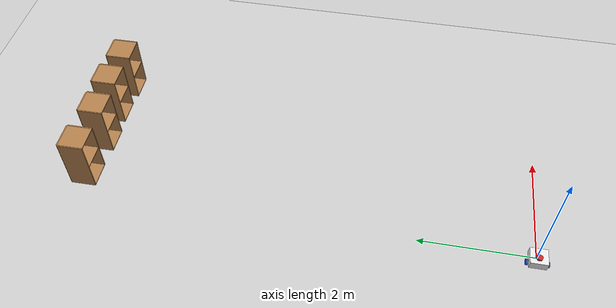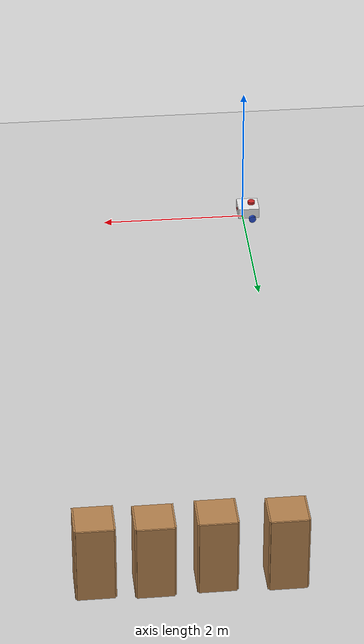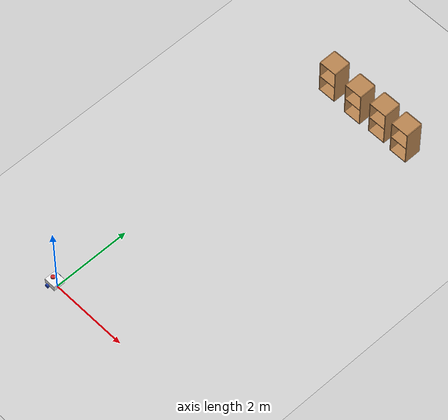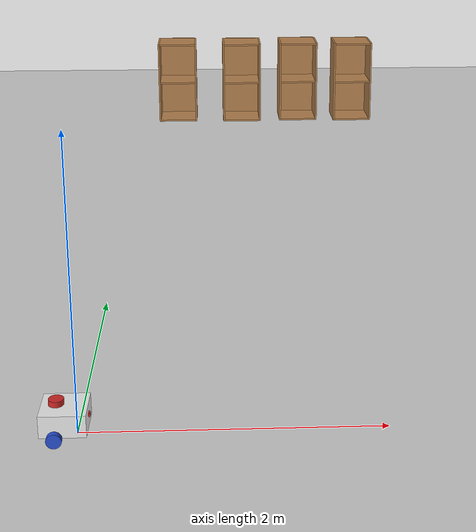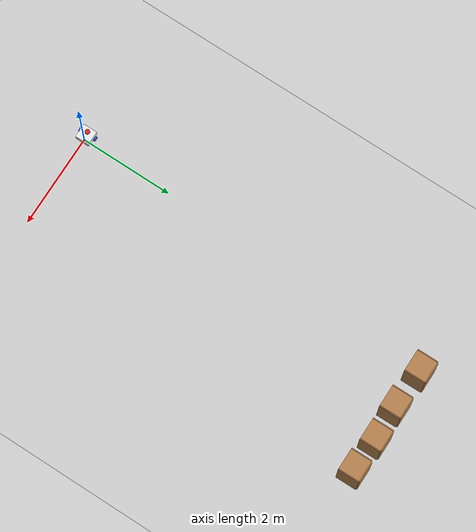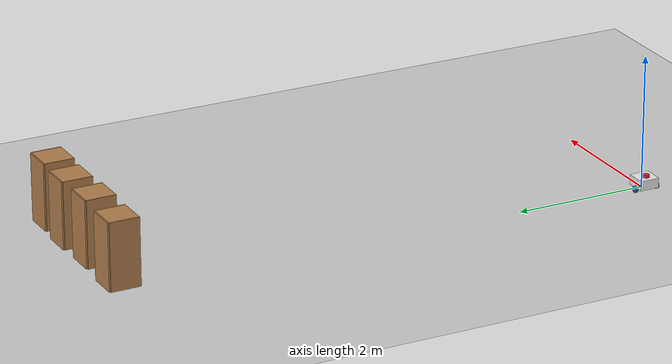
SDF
<sdf version="1.7">
 <world name="default">
  <light name="sun" type="directional">
   <pose>0 0 10 0 -0 0</pose>
   <diffuse>0.8 0.8 0.8 1</diffuse>
   <specular>0.2 0.2 0.2 1</specular>
   <attenuation>
    <range>1000</range>
    <constant>0.9</constant>
    <linear>0.01</linear>
    <quadratic>0.001</quadratic>
   </attenuation>
   <direction>-0.5 0.1 -0.9</direction>
   <spot><inner_angle>0</inner_angle><outer_angle>0</outer_angle><falloff>0</falloff></spot>
  </light>
  <model name="ground_plane">
   <static>1</static>
   <link name="link">
    <collision name="collision">
     <geometry><plane><normal>0 0 1</normal><size>100 100</size></plane></geometry>
     <surface><friction><ode><mu>100</mu><mu2>50</mu2></ode></friction></surface>
    </collision>
    <visual name="visual">
     <cast_shadows>0</cast_shadows>
     <geometry><plane><normal>0 0 1</normal><size>100 100</size></plane></geometry>
     <material>
      <script><uri>file://media/materials/scripts/gazebo.material</uri><name>Gazebo/Grey</name></script>
     </material>
    </visual>
   </link>
  </model>
  <gravity>0 0 -9.8</gravity>
  <magnetic_field>6e-06 2.3e-05 -4.2e-05</magnetic_field>
  <atmosphere type="adiabatic"/>
  <physics type="ode">
   <max_step_size>0.001</max_step_size>
   <real_time_factor>1</real_time_factor>
   <real_time_update_rate>1000</real_time_update_rate>
  </physics>
  <scene><ambient>0.4 0.4 0.4 1</ambient><background>0.7 0.7 0.7 1</background><shadows>1</shadows></scene>
  <audio><device>default</device></audio>
  <spherical_coordinates>
   <surface_model>EARTH_WGS84</surface_model>
   <latitude_deg>0</latitude_deg>
   <longitude_deg>0</longitude_deg>
   <elevation>0</elevation>
   <heading_deg>0</heading_deg>
  </spherical_coordinates>
  <model name="my_bot">
   <link name="base_link">
    <inertial>
     <pose>0.055714 0 0.078571 0 -0 0</pose>
     <mass>0.7</mass>
     <inertia>
      <ixx>0.0064169</ixx>
      <ixy>0</ixy>
      <ixz>0.00118929</ixz>
      <iyy>0.00745405</iyy>
      <iyz>0</iyz>
      <izz>0.00876214</izz>
     </inertia>
    </inertial>
    <collision name="base_link_fixed_joint_lump__chassis_collision">
     <pose>0.05 0 0.075 0 -0 0</pose>
     <geometry><box><size>0.3 0.3 0.15</size></box></geometry>
    </collision>
    <collision name="base_link_fixed_joint_lump__caster_wheel_collision_1">
     <pose>0.14 0 0 0 -0 0</pose>
     <geometry><sphere><radius>0.05</radius></sphere></geometry>
     <surface><friction><ode><mu>0.001</mu><mu2>0.001</mu2></ode></friction></surface>
    </collision>
    <collision name="base_link_fixed_joint_lump__laser_frame_collision_2">
     <pose>0 0 0.175 0 -0 0</pose>
     <geometry><cylinder><length>0.04</length><radius>0.05</radius></cylinder></geometry>
    </collision>
    <visual name="base_link_fixed_joint_lump__chassis_visual">
     <pose>0.05 0 0.075 0 -0 0</pose>
     <geometry><box><size>0.3 0.3 0.15</size></box></geometry>
     <material>
      <script><name>Gazebo/White</name><uri>file://media/materials/scripts/gazebo.material</uri></script>
     </material>
    </visual>
    <visual name="base_link_fixed_joint_lump__camera_link_visual_1">
     <pose>0.205 0 0.08 0 -0 0</pose>
     <geometry><box><size>0.01 0.03 0.03</size></box></geometry>
     <material>
      <script><name>Gazebo/Red</name><uri>file://media/materials/scripts/gazebo.material</uri></script>
     </material>
    </visual>
    <visual name="base_link_fixed_joint_lump__caster_wheel_visual_2">
     <pose>0.14 0 0 0 -0 0</pose>
     <geometry><sphere><radius>0.05</radius></sphere></geometry>
     <material>
      <script><name>Gazebo/Black</name><uri>file://media/materials/scripts/gazebo.material</uri></script>
     </material>
    </visual>
    <visual name="base_link_fixed_joint_lump__laser_frame_visual_3">
     <pose>0 0 0.175 0 -0 0</pose>
     <geometry><cylinder><length>0.04</length><radius>0.05</radius></cylinder></geometry>
     <material>
      <script><name>Gazebo/Red</name><uri>file://media/materials/scripts/gazebo.material</uri></script>
     </material>
    </visual>
    <sensor name="camera" type="depth">
     <visualize>1</visualize>
     <update_rate>10</update_rate>
     <camera>
      <horizontal_fov>1.089</horizontal_fov>
      <image><format>B8G8R8</format><width>640</width><height>480</height></image>
      <clip><near>0.05</near><far>8</far></clip>
     </camera>
     <plugin name="camera_controller" filename="libgazebo_ros_camera.so">
      <frame_name>camera_link_optical</frame_name>
      <min_depth>0.1</min_depth>
      <max_depth>100.0</max_depth>
     </plugin>
     <pose>0.205 0 0.08 0 -0 0</pose>
    </sensor>
    <sensor name="laser" type="ray">
     <visualize>0</visualize>
     <update_rate>10</update_rate>
     <ray>
      <scan>
       <horizontal>
        <samples>360</samples>
        <min_angle>-3.14</min_angle>
        <max_angle>3.14</max_angle>
        <resolution>1</resolution>
       </horizontal>
       <vertical><samples>1</samples><min_angle>0</min_angle><max_angle>0</max_angle></vertical>
      </scan>
      <range><min>0.3</min><max>12</max></range>
     </ray>
     <plugin name="laser_controller" filename="libgazebo_ros_ray_sensor.so">
      <ros><argument>~/out:=scan</argument></ros>
      <output_type>sensor_msgs/LaserScan</output_type>
      <frame_name>laser_frame</frame_name>
     </plugin>
     <pose>0 0 0.175 0 -0 0</pose>
    </sensor>
   </link>
   <joint name="left_wheel_joint" type="revolute">
    <pose relative_to="base_link">0 0.175 0 -1.5708 0 0</pose>
    <parent>base_link</parent>
    <child>left_wheel</child>
    <axis>
     <xyz>0 0 1</xyz>
     <limit><lower>-1e+16</lower><upper>1e+16</upper></limit>
     <dynamics><spring_reference>0</spring_reference><spring_stiffness>0</spring_stiffness></dynamics>
    </axis>
   </joint>
   <link name="left_wheel">
    <pose relative_to="left_wheel_joint">0 0 0 0 -0 0</pose>
    <inertial>
     <mass>0.1</mass>
     <inertia>
      <ixx>7.58333e-05</ixx>
      <ixy>0</ixy>
      <ixz>0</ixz>
      <iyy>7.58333e-05</iyy>
      <iyz>0</iyz>
      <izz>0.000125</izz>
     </inertia>
    </inertial>
    <collision name="left_wheel_collision"><geometry><sphere><radius>0.05</radius></sphere></geometry></collision>
    <visual name="left_wheel_visual">
     <geometry><cylinder><length>0.04</length><radius>0.05</radius></cylinder></geometry>
     <material>
      <script><name>Gazebo/Blue</name><uri>file://media/materials/scripts/gazebo.material</uri></script>
     </material>
    </visual>
   </link>
   <joint name="right_wheel_joint" type="revolute">
    <pose relative_to="base_link">0 -0.175 0 1.5708 -0 0</pose>
    <parent>base_link</parent>
    <child>right_wheel</child>
    <axis>
     <xyz>0 0 -1</xyz>
     <limit><lower>-1e+16</lower><upper>1e+16</upper></limit>
     <dynamics><spring_reference>0</spring_reference><spring_stiffness>0</spring_stiffness></dynamics>
    </axis>
   </joint>
   <link name="right_wheel">
    <pose relative_to="right_wheel_joint">0 0 0 0 -0 0</pose>
    <inertial>
     <mass>0.1</mass>
     <inertia>
      <ixx>7.58333e-05</ixx>
      <ixy>0</ixy>
      <ixz>0</ixz>
      <iyy>7.58333e-05</iyy>
      <iyz>0</iyz>
      <izz>0.000125</izz>
     </inertia>
    </inertial>
    <collision name="right_wheel_collision">
     <geometry><sphere><radius>0.05</radius></sphere></geometry>
    </collision>
    <visual name="right_wheel_visual">
     <geometry><cylinder><length>0.04</length><radius>0.05</radius></cylinder></geometry>
     <material>
      <script><name>Gazebo/Blue</name><uri>file://media/materials/scripts/gazebo.material</uri></script>
     </material>
    </visual>
   </link>
   <static>0</static>
   <plugin name="diff_drive" filename="libgazebo_ros_diff_drive.so">
    <left_joint>left_wheel_joint</left_joint>
    <right_joint>right_wheel_joint</right_joint>
    <wheel_separation>0.35</wheel_separation>
    <wheel_diameter>0.1</wheel_diameter>
    <max_wheel_torque>200</max_wheel_torque>
    <max_wheel_acceleration>10.0</max_wheel_acceleration>
    <odometry_frame>odom</odometry_frame>
    <robot_base_frame>base_link</robot_base_frame>
    <publish_odom>1</publish_odom>
    <publish_odom_tf>1</publish_odom_tf>
    <publish_wheel_tf>1</publish_wheel_tf>
   </plugin>
   <pose>-0.127331 0.004763 0.049997 -1.6e-05 -2.2e-05 0.0001</pose>
  </model>
  <model name="cabinet">
   <static>1</static>
   <link name="cabinet_bottom_plate">
    <inertial>
     <pose>0 0 -1 0 -0 0</pose>
     <inertia><ixx>2.05</ixx><ixy>0</ixy><ixz>0</ixz><iyy>2.05</iyy><iyz>0</iyz><izz>2.05</izz></inertia>
     <mass>25</mass>
    </inertial>
    <collision name="cabinet_bottom_plate_geom">
     <pose>0 0 0.01 0 -0 0</pose>
     <geometry><box><size>0.45 0.45 0.02</size></box></geometry>
    </collision>
    <visual name="cabinet_bottom_plate_geom_visual">
     <pose>0 0 0.01 0 -0 0</pose>
     <geometry><box><size>0.45 0.45 0.02</size></box></geometry>
     <material>
      <script><uri>file://media/materials/scripts/gazebo.material</uri><name>Gazebo/Wood</name></script>
     </material>
    </visual>
    <collision name="cabinet_bottom_plate_geom_cabinet_back_plate">
     <pose>0.235 0 0.51 0 -0 0</pose>
     <geometry><box><size>0.02 0.45 1.02</size></box></geometry>
    </collision>
    <visual name="cabinet_bottom_plate_geom_cabinet_back_plate_visual">
     <pose>0.235 0 0.51 0 -0 0</pose>
     <geometry><box><size>0.02 0.45 1.02</size></box></geometry>
     <material>
      <script><uri>file://media/materials/scripts/gazebo.material</uri><name>Gazebo/Wood</name></script>
     </material>
    </visual>
    <collision name="cabinet_bottom_plate_geom_cabinet_left_plate">
     <pose>0 0.235 0.51 0 -0 0</pose>
     <geometry><box><size>0.45 0.02 1.02</size></box></geometry>
    </collision>
    <visual name="cabinet_bottom_plate_geom_cabinet_left_plate_visual">
     <pose>0 0.235 0.51 0 -0 0</pose>
     <geometry><box><size>0.45 0.02 1.02</size></box></geometry>
     <material>
      <script><uri>file://media/materials/scripts/gazebo.material</uri><name>Gazebo/Wood</name></script>
     </material>
    </visual>
    <collision name="cabinet_bottom_plate_geom_cabinet_middle_plate">
     <pose>0 0 0.51 0 -0 0</pose>
     <geometry><box><size>0.45 0.45 0.02</size></box></geometry>
    </collision>
    <visual name="cabinet_bottom_plate_geom_cabinet_middle_plate_visual">
     <pose>0 0 0.51 0 -0 0</pose>
     <geometry><box><size>0.45 0.45 0.02</size></box></geometry>
     <material>
      <script><uri>file://media/materials/scripts/gazebo.material</uri><name>Gazebo/Wood</name></script>
     </material>
    </visual>
    <collision name="cabinet_bottom_plate_geom_cabinet_right_plate">
     <pose>0 -0.235 0.51 0 -0 0</pose>
     <geometry><box><size>0.45 0.02 1.02</size></box></geometry>
    </collision>
    <visual name="cabinet_bottom_plate_geom_cabinet_right_plate_visual">
     <pose>0 -0.235 0.51 0 -0 0</pose>
     <geometry><box><size>0.45 0.02 1.02</size></box></geometry>
     <material>
      <script><uri>file://media/materials/scripts/gazebo.material</uri><name>Gazebo/Wood</name></script>
     </material>
    </visual>
    <collision name="cabinet_bottom_plate_geom_cabinet_top_plate">
     <pose>0 0 1.01 0 -0 0</pose>
     <geometry><box><size>0.45 0.45 0.02</size></box></geometry>
    </collision>
    <visual name="cabinet_bottom_plate_geom_cabinet_top_plate_visual">
     <pose>0 0 1.01 0 -0 0</pose>
     <geometry><box><size>0.45 0.45 0.02</size></box></geometry>
     <material>
      <script><uri>file://media/materials/scripts/gazebo.material</uri><name>Gazebo/Wood</name></script>
     </material>
    </visual>
   </link>
   <pose>1.97053 8.01187 0 0 -0 1.57841</pose>
  </model>
  <model name="cabinet_clone">
   <static>1</static>
   <link name="cabinet_bottom_plate">
    <inertial>
     <pose>0 0 -1 0 -0 0</pose>
     <inertia><ixx>2.05</ixx><ixy>0</ixy><ixz>0</ixz><iyy>2.05</iyy><iyz>0</iyz><izz>2.05</izz></inertia>
     <mass>25</mass>
    </inertial>
    <collision name="cabinet_bottom_plate_geom">
     <pose>0 0 0.01 0 -0 0</pose>
     <geometry><box><size>0.45 0.45 0.02</size></box></geometry>
    </collision>
    <visual name="cabinet_bottom_plate_geom_visual">
     <pose>0 0 0.01 0 -0 0</pose>
     <geometry><box><size>0.45 0.45 0.02</size></box></geometry>
     <material>
      <script><uri>file://media/materials/scripts/gazebo.material</uri><name>Gazebo/Wood</name></script>
     </material>
    </visual>
    <collision name="cabinet_bottom_plate_geom_cabinet_back_plate">
     <pose>0.235 0 0.51 0 -0 0</pose>
     <geometry><box><size>0.02 0.45 1.02</size></box></geometry>
    </collision>
    <visual name="cabinet_bottom_plate_geom_cabinet_back_plate_visual">
     <pose>0.235 0 0.51 0 -0 0</pose>
     <geometry><box><size>0.02 0.45 1.02</size></box></geometry>
     <material>
      <script><uri>file://media/materials/scripts/gazebo.material</uri><name>Gazebo/Wood</name></script>
     </material>
    </visual>
    <collision name="cabinet_bottom_plate_geom_cabinet_left_plate">
     <pose>0 0.235 0.51 0 -0 0</pose>
     <geometry><box><size>0.45 0.02 1.02</size></box></geometry>
    </collision>
    <visual name="cabinet_bottom_plate_geom_cabinet_left_plate_visual">
     <pose>0 0.235 0.51 0 -0 0</pose>
     <geometry><box><size>0.45 0.02 1.02</size></box></geometry>
     <material>
      <script><uri>file://media/materials/scripts/gazebo.material</uri><name>Gazebo/Wood</name></script>
     </material>
    </visual>
    <collision name="cabinet_bottom_plate_geom_cabinet_middle_plate">
     <pose>0 0 0.51 0 -0 0</pose>
     <geometry><box><size>0.45 0.45 0.02</size></box></geometry>
    </collision>
    <visual name="cabinet_bottom_plate_geom_cabinet_middle_plate_visual">
     <pose>0 0 0.51 0 -0 0</pose>
     <geometry><box><size>0.45 0.45 0.02</size></box></geometry>
     <material>
      <script><uri>file://media/materials/scripts/gazebo.material</uri><name>Gazebo/Wood</name></script>
     </material>
    </visual>
    <collision name="cabinet_bottom_plate_geom_cabinet_right_plate">
     <pose>0 -0.235 0.51 0 -0 0</pose>
     <geometry><box><size>0.45 0.02 1.02</size></box></geometry>
    </collision>
    <visual name="cabinet_bottom_plate_geom_cabinet_right_plate_visual">
     <pose>0 -0.235 0.51 0 -0 0</pose>
     <geometry><box><size>0.45 0.02 1.02</size></box></geometry>
     <material>
      <script><uri>file://media/materials/scripts/gazebo.material</uri><name>Gazebo/Wood</name></script>
     </material>
    </visual>
    <collision name="cabinet_bottom_plate_geom_cabinet_top_plate">
     <pose>0 0 1.01 0 -0 0</pose>
     <geometry><box><size>0.45 0.45 0.02</size></box></geometry>
    </collision>
    <visual name="cabinet_bottom_plate_geom_cabinet_top_plate_visual">
     <pose>0 0 1.01 0 -0 0</pose>
     <geometry><box><size>0.45 0.45 0.02</size></box></geometry>
     <material>
      <script><uri>file://media/materials/scripts/gazebo.material</uri><name>Gazebo/Wood</name></script>
     </material>
    </visual>
   </link>
   <pose>2.67643 7.98133 0 0 -0 1.57841</pose>
  </model>
  <model name="cabinet_clone_0">
   <static>1</static>
   <link name="cabinet_bottom_plate">
    <inertial>
     <pose>0 0 -1 0 -0 0</pose>
     <inertia><ixx>2.05</ixx><ixy>0</ixy><ixz>0</ixz><iyy>2.05</iyy><iyz>0</iyz><izz>2.05</izz></inertia>
     <mass>25</mass>
    </inertial>
    <collision name="cabinet_bottom_plate_geom">
     <pose>0 0 0.01 0 -0 0</pose>
     <geometry><box><size>0.45 0.45 0.02</size></box></geometry>
    </collision>
    <visual name="cabinet_bottom_plate_geom_visual">
     <pose>0 0 0.01 0 -0 0</pose>
     <geometry><box><size>0.45 0.45 0.02</size></box></geometry>
     <material>
      <script><uri>file://media/materials/scripts/gazebo.material</uri><name>Gazebo/Wood</name></script>
     </material>
    </visual>
    <collision name="cabinet_bottom_plate_geom_cabinet_back_plate">
     <pose>0.235 0 0.51 0 -0 0</pose>
     <geometry><box><size>0.02 0.45 1.02</size></box></geometry>
    </collision>
    <visual name="cabinet_bottom_plate_geom_cabinet_back_plate_visual">
     <pose>0.235 0 0.51 0 -0 0</pose>
     <geometry><box><size>0.02 0.45 1.02</size></box></geometry>
     <material>
      <script><uri>file://media/materials/scripts/gazebo.material</uri><name>Gazebo/Wood</name></script>
     </material>
    </visual>
    <collision name="cabinet_bottom_plate_geom_cabinet_left_plate">
     <pose>0 0.235 0.51 0 -0 0</pose>
     <geometry><box><size>0.45 0.02 1.02</size></box></geometry>
    </collision>
    <visual name="cabinet_bottom_plate_geom_cabinet_left_plate_visual">
     <pose>0 0.235 0.51 0 -0 0</pose>
     <geometry><box><size>0.45 0.02 1.02</size></box></geometry>
     <material>
      <script><uri>file://media/materials/scripts/gazebo.material</uri><name>Gazebo/Wood</name></script>
     </material>
    </visual>
    <collision name="cabinet_bottom_plate_geom_cabinet_middle_plate">
     <pose>0 0 0.51 0 -0 0</pose>
     <geometry><box><size>0.45 0.45 0.02</size></box></geometry>
    </collision>
    <visual name="cabinet_bottom_plate_geom_cabinet_middle_plate_visual">
     <pose>0 0 0.51 0 -0 0</pose>
     <geometry><box><size>0.45 0.45 0.02</size></box></geometry>
     <material>
      <script><uri>file://media/materials/scripts/gazebo.material</uri><name>Gazebo/Wood</name></script>
     </material>
    </visual>
    <collision name="cabinet_bottom_plate_geom_cabinet_right_plate">
     <pose>0 -0.235 0.51 0 -0 0</pose>
     <geometry><box><size>0.45 0.02 1.02</size></box></geometry>
    </collision>
    <visual name="cabinet_bottom_plate_geom_cabinet_right_plate_visual">
     <pose>0 -0.235 0.51 0 -0 0</pose>
     <geometry><box><size>0.45 0.02 1.02</size></box></geometry>
     <material>
      <script><uri>file://media/materials/scripts/gazebo.material</uri><name>Gazebo/Wood</name></script>
     </material>
    </visual>
    <collision name="cabinet_bottom_plate_geom_cabinet_top_plate">
     <pose>0 0 1.01 0 -0 0</pose>
     <geometry><box><size>0.45 0.45 0.02</size></box></geometry>
    </collision>
    <visual name="cabinet_bottom_plate_geom_cabinet_top_plate_visual">
     <pose>0 0 1.01 0 -0 0</pose>
     <geometry><box><size>0.45 0.45 0.02</size></box></geometry>
     <material>
      <script><uri>file://media/materials/scripts/gazebo.material</uri><name>Gazebo/Wood</name></script>
     </material>
    </visual>
   </link>
   <pose>1.23381 7.98312 0 0 -0 1.57841</pose>
  </model>
  <model name="cabinet_clone_1">
   <static>1</static>
   <link name="cabinet_bottom_plate">
    <inertial>
     <pose>0 0 -1 0 -0 0</pose>
     <inertia><ixx>2.05</ixx><ixy>0</ixy><ixz>0</ixz><iyy>2.05</iyy><iyz>0</iyz><izz>2.05</izz></inertia>
     <mass>25</mass>
    </inertial>
    <collision name="cabinet_bottom_plate_geom">
     <pose>0 0 0.01 0 -0 0</pose>
     <geometry><box><size>0.45 0.45 0.02</size></box></geometry>
    </collision>
    <visual name="cabinet_bottom_plate_geom_visual">
     <pose>0 0 0.01 0 -0 0</pose>
     <geometry><box><size>0.45 0.45 0.02</size></box></geometry>
     <material>
      <script><uri>file://media/materials/scripts/gazebo.material</uri><name>Gazebo/Wood</name></script>
     </material>
    </visual>
    <collision name="cabinet_bottom_plate_geom_cabinet_back_plate">
     <pose>0.235 0 0.51 0 -0 0</pose>
     <geometry><box><size>0.02 0.45 1.02</size></box></geometry>
    </collision>
    <visual name="cabinet_bottom_plate_geom_cabinet_back_plate_visual">
     <pose>0.235 0 0.51 0 -0 0</pose>
     <geometry><box><size>0.02 0.45 1.02</size></box></geometry>
     <material>
      <script><uri>file://media/materials/scripts/gazebo.material</uri><name>Gazebo/Wood</name></script>
     </material>
    </visual>
    <collision name="cabinet_bottom_plate_geom_cabinet_left_plate">
     <pose>0 0.235 0.51 0 -0 0</pose>
     <geometry><box><size>0.45 0.02 1.02</size></box></geometry>
    </collision>
    <visual name="cabinet_bottom_plate_geom_cabinet_left_plate_visual">
     <pose>0 0.235 0.51 0 -0 0</pose>
     <geometry><box><size>0.45 0.02 1.02</size></box></geometry>
     <material>
      <script><uri>file://media/materials/scripts/gazebo.material</uri><name>Gazebo/Wood</name></script>
     </material>
    </visual>
    <collision name="cabinet_bottom_plate_geom_cabinet_middle_plate">
     <pose>0 0 0.51 0 -0 0</pose>
     <geometry><box><size>0.45 0.45 0.02</size></box></geometry>
    </collision>
    <visual name="cabinet_bottom_plate_geom_cabinet_middle_plate_visual">
     <pose>0 0 0.51 0 -0 0</pose>
     <geometry><box><size>0.45 0.45 0.02</size></box></geometry>
     <material>
      <script><uri>file://media/materials/scripts/gazebo.material</uri><name>Gazebo/Wood</name></script>
     </material>
    </visual>
    <collision name="cabinet_bottom_plate_geom_cabinet_right_plate">
     <pose>0 -0.235 0.51 0 -0 0</pose>
     <geometry><box><size>0.45 0.02 1.02</size></box></geometry>
    </collision>
    <visual name="cabinet_bottom_plate_geom_cabinet_right_plate_visual">
     <pose>0 -0.235 0.51 0 -0 0</pose>
     <geometry><box><size>0.45 0.02 1.02</size></box></geometry>
     <material>
      <script><uri>file://media/materials/scripts/gazebo.material</uri><name>Gazebo/Wood</name></script>
     </material>
    </visual>
    <collision name="cabinet_bottom_plate_geom_cabinet_top_plate">
     <pose>0 0 1.01 0 -0 0</pose>
     <geometry><box><size>0.45 0.45 0.02</size></box></geometry>
    </collision>
    <visual name="cabinet_bottom_plate_geom_cabinet_top_plate_visual">
     <pose>0 0 1.01 0 -0 0</pose>
     <geometry><box><size>0.45 0.45 0.02</size></box></geometry>
     <material>
      <script><uri>file://media/materials/scripts/gazebo.material</uri><name>Gazebo/Wood</name></script>
     </material>
    </visual>
   </link>
   <pose>0.400122 8.01165 0 0 -0 1.57841</pose>
  </model>
 </world>
</sdf>
